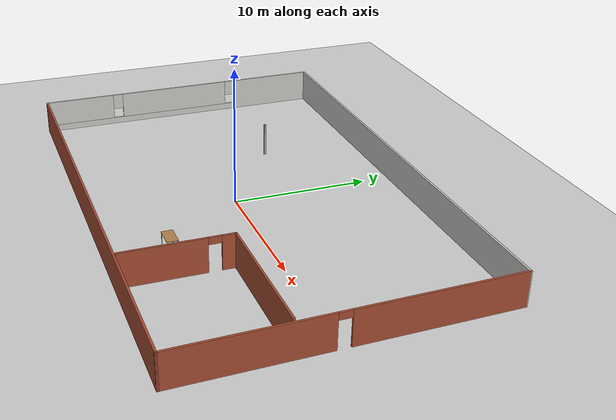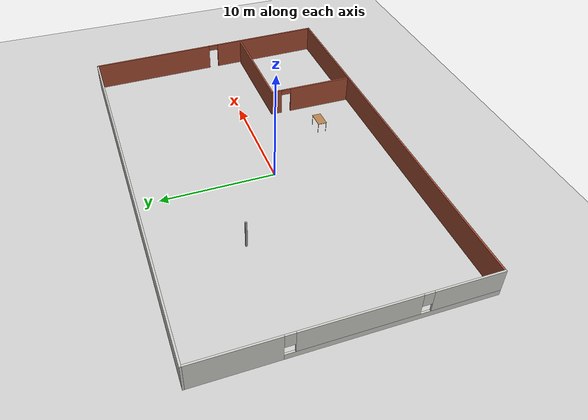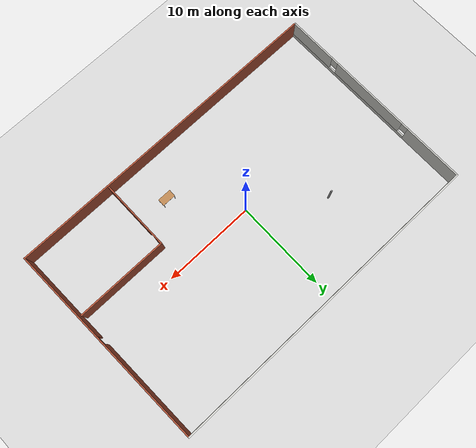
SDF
<sdf version="1.6">
 <world name="default">
  <light name="sun" type="directional">
   <pose>0 0 10 0 -0 0</pose>
   <diffuse>0.8 0.8 0.8 1</diffuse>
   <specular>0.2 0.2 0.2 1</specular>
   <attenuation>
    <range>1000</range>
    <constant>0.9</constant>
    <linear>0.01</linear>
    <quadratic>0.001</quadratic>
   </attenuation>
   <direction>-0.5 0.1 -0.9</direction>
  </light>
  <model name="ground_plane">
   <static>1</static>
   <link name="link">
    <collision name="collision">
     <geometry><plane><normal>0 0 1</normal><size>100 100</size></plane></geometry>
     <surface>
      <contact><collide_bitmask>65535</collide_bitmask></contact>
      <friction><ode><mu>100</mu><mu2>50</mu2></ode></friction>
     </surface>
    </collision>
    <visual name="visual">
     <cast_shadows>0</cast_shadows>
     <geometry><plane><normal>0 0 1</normal><size>100 100</size></plane></geometry>
     <material>
      <script><uri>file://media/materials/scripts/gazebo.material</uri><name>Gazebo/Grey</name></script>
     </material>
    </visual>
   </link>
  </model>
  <gravity>0 0 -9.8</gravity>
  <magnetic_field>6e-06 2.3e-05 -4.2e-05</magnetic_field>
  <atmosphere type="adiabatic"/>
  <physics name="default_physics" default="0" type="ode">
   <max_step_size>0.001</max_step_size>
   <real_time_factor>1</real_time_factor>
   <real_time_update_rate>1000</real_time_update_rate>
  </physics>
  <scene><ambient>0.4 0.4 0.4 1</ambient><background>0.7 0.7 0.7 1</background><shadows>1</shadows></scene>
  <spherical_coordinates>
   <surface_model>EARTH_WGS84</surface_model>
   <latitude_deg>0</latitude_deg>
   <longitude_deg>0</longitude_deg>
   <elevation>0</elevation>
   <heading_deg>0</heading_deg>
  </spherical_coordinates>
  <model name="last">
   <pose>0.922385 0.748484 0 0 -0 0</pose>
   <link name="Wall_12">
    <collision name="Wall_12_Collision">
     <geometry><box><size>0.16 0.15 2.5</size></box></geometry>
     <pose>0 0 1.25 0 -0 0</pose>
    </collision>
    <visual name="Wall_12_Visual">
     <pose>0 0 1.25 0 -0 0</pose>
     <geometry><box><size>0.16 0.15 2.5</size></box></geometry>
     <material>
      <script><uri>file://media/materials/scripts/gazebo.material</uri><name>Gazebo/Grey</name></script>
      <ambient>0 0 0 0</ambient>
     </material>
     <meta><layer>0</layer></meta>
    </visual>
    <pose>-7.87465 3.99776 0 0 -0 0</pose>
   </link>
   <link name="Wall_13">
    <collision name="Wall_13_Collision">
     <geometry><box><size>10 0.15 2.5</size></box></geometry>
     <pose>0 0 1.25 0 -0 0</pose>
    </collision>
    <visual name="Wall_13_Visual">
     <pose>0 0 1.25 0 -0 0</pose>
     <geometry><box><size>10 0.15 2.5</size></box></geometry>
     <material>
      <script><uri>file://media/materials/scripts/gazebo.material</uri><name>Gazebo/Bricks</name></script>
      <ambient>1 1 1 1</ambient>
     </material>
     <meta><layer>0</layer></meta>
    </visual>
    <pose>12.482 -3.50189 0 0 -0 3.14159</pose>
   </link>
   <link name="Wall_14">
    <pose>7.55696 -7.30189 0 0 0 -1.5708</pose>
    <visual name="Wall_14_Visual_0">
     <pose>-3.37085 0 1.25 0 -0 0</pose>
     <geometry><box><size>1.0083 0.15 2.5</size></box></geometry>
     <material>
      <script><uri>file://media/materials/scripts/gazebo.material</uri><name>Gazebo/Bricks</name></script>
      <ambient>1 1 1 1</ambient>
     </material>
     <meta><layer>0</layer></meta>
    </visual>
    <collision name="Wall_14_Collision_0">
     <geometry><box><size>1.0083 0.15 2.5</size></box></geometry>
     <pose>-3.37085 0 1.25 0 -0 0</pose>
    </collision>
    <visual name="Wall_14_Visual_1">
     <pose>0.95415 0 1.25 0 -0 0</pose>
     <geometry><box><size>5.8417 0.15 2.5</size></box></geometry>
     <material>
      <script><uri>file://media/materials/scripts/gazebo.material</uri><name>Gazebo/Bricks</name></script>
      <ambient>1 1 1 1</ambient>
     </material>
     <meta><layer>0</layer></meta>
    </visual>
    <collision name="Wall_14_Collision_1">
     <geometry><box><size>5.8417 0.15 2.5</size></box></geometry>
     <pose>0.95415 0 1.25 0 -0 0</pose>
    </collision>
    <visual name="Wall_14_Visual_2">
     <pose>-2.4167 0 2.25 0 -0 0</pose>
     <geometry><box><size>0.9 0.15 0.5</size></box></geometry>
     <material>
      <script><uri>file://media/materials/scripts/gazebo.material</uri><name>Gazebo/Bricks</name></script>
      <ambient>1 1 1 1</ambient>
     </material>
     <meta><layer>0</layer></meta>
    </visual>
    <collision name="Wall_14_Collision_2">
     <geometry><box><size>0.9 0.15 0.5</size></box></geometry>
     <pose>-2.4167 0 2.25 0 -0 0</pose>
    </collision>
   </link>
   <link name="Wall_4">
    <collision name="Wall_4_Collision">
     <geometry><box><size>35.5 0.15 2.5</size></box></geometry>
     <pose>0 0 1.25 0 -0 0</pose>
    </collision>
    <visual name="Wall_4_Visual">
     <pose>0 0 1.25 0 -0 0</pose>
     <geometry><box><size>35.5 0.15 2.5</size></box></geometry>
     <material>
      <script><uri>file://media/materials/scripts/gazebo.material</uri><name>Gazebo/CeilingTiled</name></script>
      <ambient>1 1 1 1</ambient>
     </material>
     <meta><layer>0</layer></meta>
    </visual>
    <pose>-0.25082 11.3 0 0 -0 3.14159</pose>
   </link>
   <link name="Wall_5">
    <pose>-17.9258 0 0 0 0 -1.5708</pose>
    <visual name="Wall_5_Visual_0">
     <pose>-8.04234 0 1.25 0 -0 0</pose>
     <geometry><box><size>6.66531 0.15 2.5</size></box></geometry>
     <material>
      <script><uri>file://media/materials/scripts/gazebo.material</uri><name>Gazebo/CeilingTiled</name></script>
      <ambient>1 1 1 1</ambient>
     </material>
     <meta><layer>0</layer></meta>
    </visual>
    <collision name="Wall_5_Collision_0">
     <geometry><box><size>6.66531 0.15 2.5</size></box></geometry>
     <pose>-8.04234 0 1.25 0 -0 0</pose>
    </collision>
    <visual name="Wall_5_Visual_1">
     <pose>3.33266 0 0.25 0 -0 0</pose>
     <geometry><box><size>16.0847 0.15 0.5</size></box></geometry>
     <material>
      <script><uri>file://media/materials/scripts/gazebo.material</uri><name>Gazebo/CeilingTiled</name></script>
      <ambient>1 1 1 1</ambient>
     </material>
     <meta><layer>0</layer></meta>
    </visual>
    <collision name="Wall_5_Collision_1">
     <geometry><box><size>16.0847 0.15 0.5</size></box></geometry>
     <pose>3.33266 0 0.25 0 -0 0</pose>
    </collision>
    <visual name="Wall_5_Visual_2">
     <pose>0.572548 0 1.5 0 -0 0</pose>
     <geometry><box><size>8.96447 0.15 2</size></box></geometry>
     <material>
      <script><uri>file://media/materials/scripts/gazebo.material</uri><name>Gazebo/CeilingTiled</name></script>
      <ambient>1 1 1 1</ambient>
     </material>
     <meta><layer>0</layer></meta>
    </visual>
    <collision name="Wall_5_Collision_2">
     <geometry><box><size>8.96447 0.15 2</size></box></geometry>
     <pose>0.572548 0 1.5 0 -0 0</pose>
    </collision>
    <visual name="Wall_5_Visual_3">
     <pose>8.61489 0 1.5 0 -0 0</pose>
     <geometry><box><size>5.52022 0.15 2</size></box></geometry>
     <material>
      <script><uri>file://media/materials/scripts/gazebo.material</uri><name>Gazebo/CeilingTiled</name></script>
      <ambient>1 1 1 1</ambient>
     </material>
     <meta><layer>0</layer></meta>
    </visual>
    <collision name="Wall_5_Collision_3">
     <geometry><box><size>5.52022 0.15 2</size></box></geometry>
     <pose>8.61489 0 1.5 0 -0 0</pose>
    </collision>
    <visual name="Wall_5_Visual_4">
     <pose>-4.30969 0 1.9 0 -0 0</pose>
     <geometry><box><size>0.8 0.15 1.2</size></box></geometry>
     <material>
      <script><uri>file://media/materials/scripts/gazebo.material</uri><name>Gazebo/CeilingTiled</name></script>
      <ambient>1 1 1 1</ambient>
     </material>
     <meta><layer>0</layer></meta>
    </visual>
    <collision name="Wall_5_Collision_4">
     <geometry><box><size>0.8 0.15 1.2</size></box></geometry>
     <pose>-4.30969 0 1.9 0 -0 0</pose>
    </collision>
    <visual name="Wall_5_Visual_5">
     <pose>5.45479 0 1.9 0 -0 0</pose>
     <geometry><box><size>0.8 0.15 1.2</size></box></geometry>
     <material>
      <script><uri>file://media/materials/scripts/gazebo.material</uri><name>Gazebo/CeilingTiled</name></script>
      <ambient>1 1 1 1</ambient>
     </material>
     <meta><layer>0</layer></meta>
    </visual>
    <collision name="Wall_5_Collision_5">
     <geometry><box><size>0.8 0.15 1.2</size></box></geometry>
     <pose>5.45479 0 1.9 0 -0 0</pose>
    </collision>
   </link>
   <link name="Wall_6">
    <collision name="Wall_6_Collision">
     <geometry><box><size>36 0.15 2.5</size></box></geometry>
     <pose>0 0 1.25 0 -0 0</pose>
    </collision>
    <visual name="Wall_6_Visual">
     <pose>0 0 1.25 0 -0 0</pose>
     <geometry><box><size>36 0.15 2.5</size></box></geometry>
     <material>
      <script><uri>file://media/materials/scripts/gazebo.material</uri><name>Gazebo/Bricks</name></script>
      <ambient>1 1 1 1</ambient>
     </material>
     <meta><layer>0</layer></meta>
    </visual>
    <pose>-0.00082 -11.3 0 0 -0 0</pose>
   </link>
   <link name="Wall_7">
    <pose>17.6742 0 0 0 -0 1.59292</pose>
    <visual name="Wall_7_Visual_0">
     <pose>-6.20073 0 1.25 0 -0 0</pose>
     <geometry><box><size>10.3541 0.15 2.5</size></box></geometry>
     <material>
      <script><uri>file://media/materials/scripts/gazebo.material</uri><name>Gazebo/Bricks</name></script>
      <ambient>1 1 1 1</ambient>
     </material>
     <meta><layer>0</layer></meta>
    </visual>
    <collision name="Wall_7_Collision_0">
     <geometry><box><size>10.3541 0.15 2.5</size></box></geometry>
     <pose>-6.20073 0 1.25 0 -0 0</pose>
    </collision>
    <visual name="Wall_7_Visual_1">
     <pose>5.62703 0 1.25 0 -0 0</pose>
     <geometry><box><size>11.5015 0.15 2.5</size></box></geometry>
     <material>
      <script><uri>file://media/materials/scripts/gazebo.material</uri><name>Gazebo/Bricks</name></script>
      <ambient>1 1 1 1</ambient>
     </material>
     <meta><layer>0</layer></meta>
    </visual>
    <collision name="Wall_7_Collision_1">
     <geometry><box><size>11.5015 0.15 2.5</size></box></geometry>
     <pose>5.62703 0 1.25 0 -0 0</pose>
    </collision>
    <visual name="Wall_7_Visual_2">
     <pose>-0.573697 0 2.25 0 -0 0</pose>
     <geometry><box><size>0.9 0.15 0.5</size></box></geometry>
     <material>
      <script><uri>file://media/materials/scripts/gazebo.material</uri><name>Gazebo/Bricks</name></script>
      <ambient>1 1 1 1</ambient>
     </material>
     <meta><layer>0</layer></meta>
    </visual>
    <collision name="Wall_7_Collision_2">
     <geometry><box><size>0.9 0.15 0.5</size></box></geometry>
     <pose>-0.573697 0 2.25 0 -0 0</pose>
    </collision>
   </link>
   <static>1</static>
  </model>
  <model name="table">
   <static>1</static>
   <link name="link">
    <collision name="surface">
     <pose>0 0 1 0 -0 0</pose>
     <geometry><box><size>1.5 0.8 0.03</size></box></geometry>
     <surface><friction><ode><mu>0.6</mu><mu2>0.6</mu2></ode></friction></surface>
    </collision>
    <visual name="visual1">
     <pose>0 0 1 0 -0 0</pose>
     <geometry><box><size>1.5 0.8 0.03</size></box></geometry>
     <material>
      <script><uri>file://media/materials/scripts/gazebo.material</uri><name>Gazebo/Wood</name></script>
     </material>
    </visual>
    <collision name="front_left_leg">
     <pose>0.68 0.38 0.5 0 -0 0</pose>
     <geometry><cylinder><radius>0.02</radius><length>1</length></cylinder></geometry>
    </collision>
    <visual name="front_left_leg">
     <pose>0.68 0.38 0.5 0 -0 0</pose>
     <geometry><cylinder><radius>0.02</radius><length>1</length></cylinder></geometry>
     <material>
      <script><uri>file://media/materials/scripts/gazebo.material</uri><name>Gazebo/Grey</name></script>
     </material>
    </visual>
    <collision name="front_right_leg">
     <pose>0.68 -0.38 0.5 0 -0 0</pose>
     <geometry><cylinder><radius>0.02</radius><length>1</length></cylinder></geometry>
    </collision>
    <visual name="front_right_leg">
     <pose>0.68 -0.38 0.5 0 -0 0</pose>
     <geometry><cylinder><radius>0.02</radius><length>1</length></cylinder></geometry>
     <material>
      <script><uri>file://media/materials/scripts/gazebo.material</uri><name>Gazebo/Grey</name></script>
     </material>
    </visual>
    <collision name="back_right_leg">
     <pose>-0.68 -0.38 0.5 0 -0 0</pose>
     <geometry><cylinder><radius>0.02</radius><length>1</length></cylinder></geometry>
    </collision>
    <visual name="back_right_leg">
     <pose>-0.68 -0.38 0.5 0 -0 0</pose>
     <geometry><cylinder><radius>0.02</radius><length>1</length></cylinder></geometry>
     <material>
      <script><uri>file://media/materials/scripts/gazebo.material</uri><name>Gazebo/Grey</name></script>
     </material>
    </visual>
    <collision name="back_left_leg">
     <pose>-0.68 0.38 0.5 0 -0 0</pose>
     <geometry><cylinder><radius>0.02</radius><length>1</length></cylinder></geometry>
    </collision>
    <visual name="back_left_leg">
     <pose>-0.68 0.38 0.5 0 -0 0</pose>
     <geometry><cylinder><radius>0.02</radius><length>1</length></cylinder></geometry>
     <material>
      <script><uri>file://media/materials/scripts/gazebo.material</uri><name>Gazebo/Grey</name></script>
     </material>
    </visual>
   </link>
   <pose>4.98643 -6.15289 0 0 -0 0</pose>
  </model>
 </world>
</sdf>
